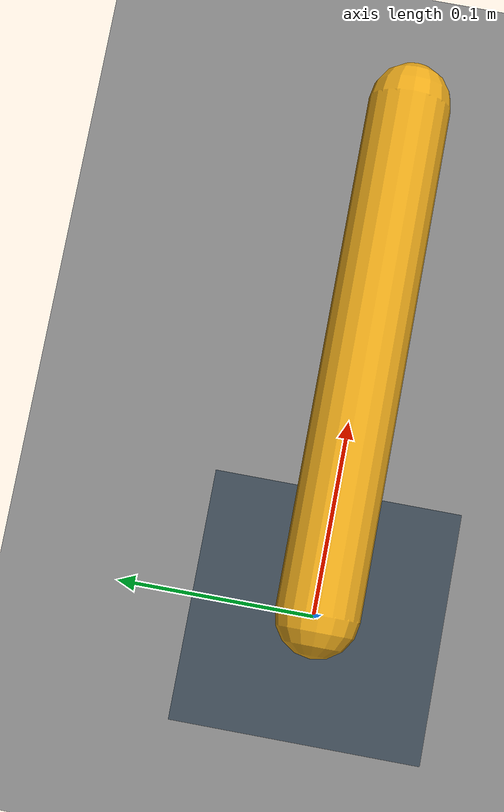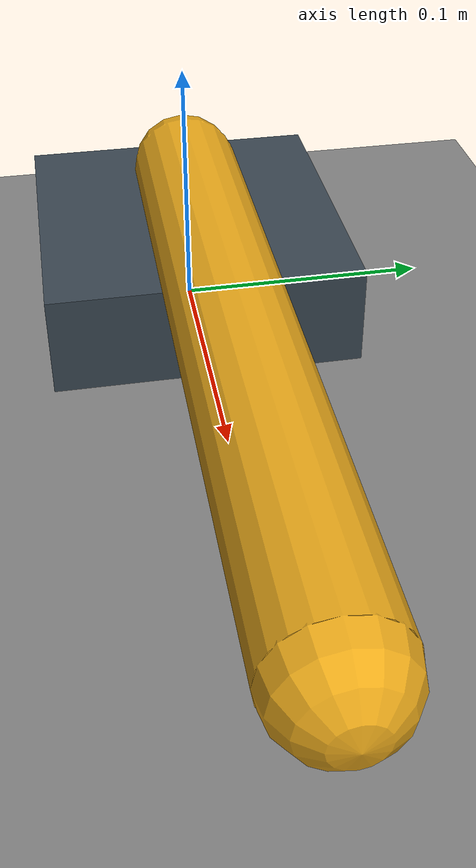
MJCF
<?xml version="1.0" encoding="UTF-8"?>
<mujoco model="M1 revolute joint probe">
  <compiler angle="radian" autolimits="true"/>
  <option timestep="0.002" gravity="0 0 0" integrator="implicitfast"/>
  <worldbody>
    <geom name="floor" type="plane" size="1 1 0.1" contype="0" conaffinity="0"/>
    <body name="base" pos="0 0 0">
      <geom name="base_geom" type="box" pos="0 0 0.02" size="0.06 0.06 0.02" rgba="0.22 0.27 0.31 1"/>
      <body name="arm_link" pos="0 0 0.06">
        <joint name="probe_hinge" type="hinge" axis="0 0 1" range="-1 1" limited="true" damping="4"/>
        <geom name="link_geom" type="capsule" fromto="0 0 0 0.25 0 0" size="0.02" mass="0.25" rgba="0.9 0.65 0.1 1"/>
      </body>
    </body>
  </worldbody>
  <actuator>
    <position name="hinge_position" joint="probe_hinge" kp="80" kv="8" ctrlrange="-1 1" forcelimited="true" forcerange="-12 12"/>
  </actuator>
</mujoco>
